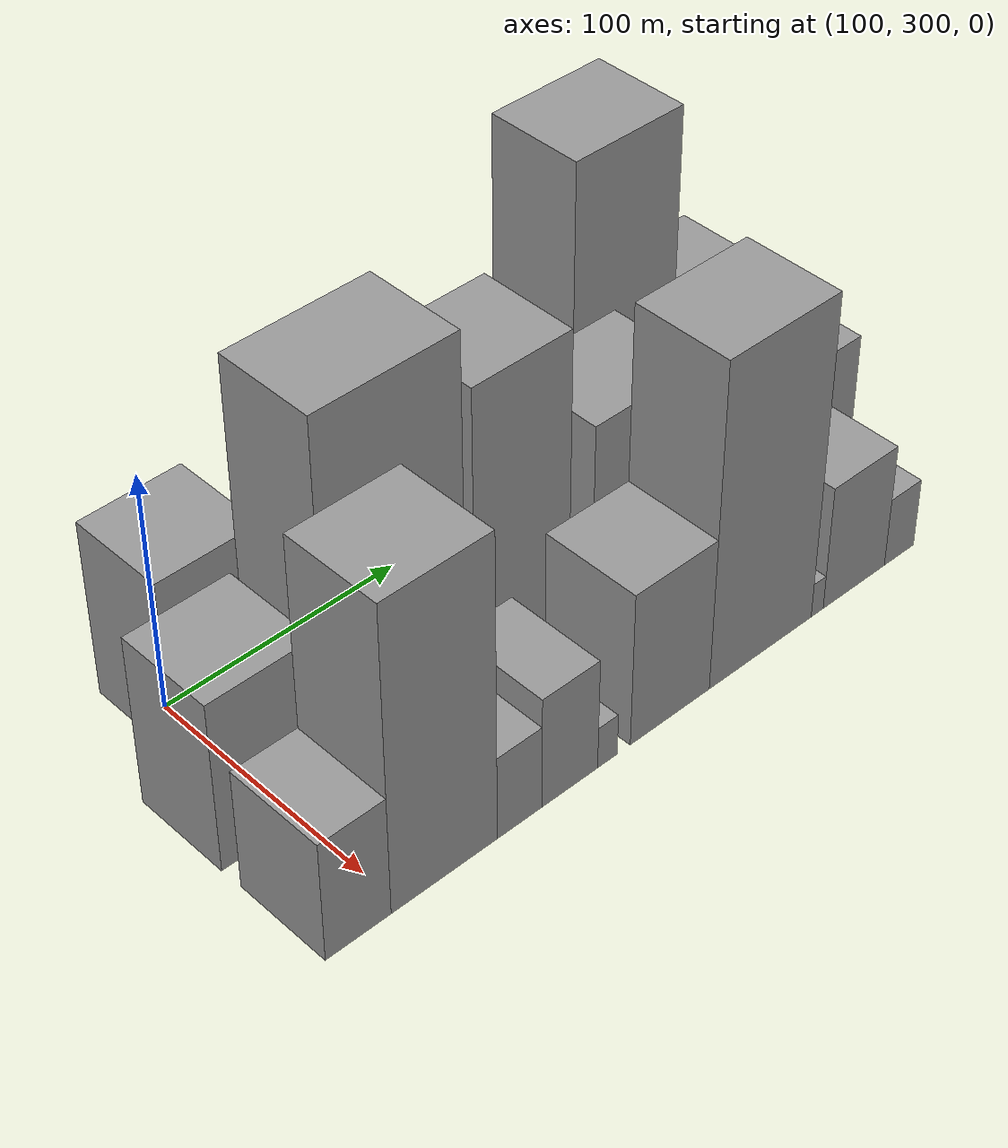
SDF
<sdf version="1.6">
 <world name="default">
  <model name="building_26">
   <static>1</static>
   <pose>100.0000 309.3299 0 0.000000 0.000000 0.000000</pose>
   <link name="link">
    <pose>0 0 37.50 0 0 0</pose>
    <collision name="collision"><geometry><box><size>40.0000 41.6088 75.0000</size></box></geometry></collision>
    <visual name="visual">
     <cast_shadows>0</cast_shadows>
     <geometry><box><size>40.0000 41.6088 75.0000</size></box></geometry>
     <material>
      <script>
       <uri>model://grey_wall/materials/scripts</uri>
       <uri>model://grey_wall/materials/textures</uri>
       <name>vrc/grey_wall</name>
      </script>
     </material>
    </visual>
   </link>
  </model>
  <model name="building_27">
   <static>1</static>
   <pose>100.0000 342.5197 0 0.000000 0.000000 0.000000</pose>
   <link name="link">
    <pose>0 0 22.50 0 0 0</pose>
    <collision name="collision"><geometry><box><size>40.0000 24.7709 45.0000</size></box></geometry></collision>
    <visual name="visual">
     <cast_shadows>0</cast_shadows>
     <geometry><box><size>40.0000 24.7709 45.0000</size></box></geometry>
     <material>
      <script>
       <uri>model://grey_wall/materials/scripts</uri>
       <uri>model://grey_wall/materials/textures</uri>
       <name>vrc/grey_wall</name>
      </script>
     </material>
    </visual>
   </link>
  </model>
  <model name="building_28">
   <static>1</static>
   <pose>100.0000 368.0168 0 0.000000 0.000000 0.000000</pose>
   <link name="link">
    <pose>0 0 24.00 0 0 0</pose>
    <collision name="collision"><geometry><box><size>40.0000 26.2232 48.0000</size></box></geometry></collision>
    <visual name="visual">
     <cast_shadows>0</cast_shadows>
     <geometry><box><size>40.0000 26.2232 48.0000</size></box></geometry>
     <material>
      <script>
       <uri>model://grey_wall/materials/scripts</uri>
       <uri>model://grey_wall/materials/textures</uri>
       <name>vrc/grey_wall</name>
      </script>
     </material>
    </visual>
   </link>
  </model>
  <model name="building_29">
   <static>1</static>
   <pose>100.0000 400.9794 0 0.000000 0.000000 0.000000</pose>
   <link name="link">
    <pose>0 0 36.00 0 0 0</pose>
    <collision name="collision"><geometry><box><size>40.0000 39.7020 72.0000</size></box></geometry></collision>
    <visual name="visual">
     <cast_shadows>0</cast_shadows>
     <geometry><box><size>40.0000 39.7020 72.0000</size></box></geometry>
     <material>
      <script>
       <uri>model://grey_wall/materials/scripts</uri>
       <uri>model://grey_wall/materials/textures</uri>
       <name>vrc/grey_wall</name>
      </script>
     </material>
    </visual>
   </link>
  </model>
  <model name="building_30">
   <static>1</static>
   <pose>100.0000 440.6748 0 0.000000 0.000000 0.000000</pose>
   <link name="link">
    <pose>0 0 36.00 0 0 0</pose>
    <collision name="collision"><geometry><box><size>40.0000 39.6888 72.0000</size></box></geometry></collision>
    <visual name="visual">
     <cast_shadows>0</cast_shadows>
     <geometry><box><size>40.0000 39.6888 72.0000</size></box></geometry>
     <material>
      <script>
       <uri>model://grey_wall/materials/scripts</uri>
       <uri>model://grey_wall/materials/textures</uri>
       <name>vrc/grey_wall</name>
      </script>
     </material>
    </visual>
   </link>
  </model>
  <model name="building_31">
   <static>1</static>
   <pose>100.0000 492.5339 0 0.000000 0.000000 0.000000</pose>
   <link name="link">
    <pose>0 0 73.50 0 0 0</pose>
    <collision name="collision"><geometry><box><size>40.0000 50.0295 147.0000</size></box></geometry></collision>
    <visual name="visual">
     <cast_shadows>0</cast_shadows>
     <geometry><box><size>40.0000 50.0295 147.0000</size></box></geometry>
     <material>
      <script>
       <uri>model://grey_wall/materials/scripts</uri>
       <uri>model://grey_wall/materials/textures</uri>
       <name>vrc/grey_wall</name>
      </script>
     </material>
    </visual>
   </link>
  </model>
  <model name="building_32">
   <static>1</static>
   <pose>100.0000 522.5782 0 0.000000 0.000000 0.000000</pose>
   <link name="link">
    <pose>0 0 10.50 0 0 0</pose>
    <collision name="collision"><geometry><box><size>40.0000 10.0590 21.0000</size></box></geometry></collision>
    <visual name="visual">
     <cast_shadows>0</cast_shadows>
     <geometry><box><size>40.0000 10.0590 21.0000</size></box></geometry>
     <material>
      <script>
       <uri>model://grey_wall/materials/scripts</uri>
       <uri>model://grey_wall/materials/textures</uri>
       <name>vrc/grey_wall</name>
      </script>
     </material>
    </visual>
   </link>
  </model>
  <model name="building_33">
   <static>1</static>
   <pose>100.0000 548.5103 0 0.000000 0.000000 0.000000</pose>
   <link name="link">
    <pose>0 0 30.00 0 0 0</pose>
    <collision name="collision"><geometry><box><size>40.0000 31.8052 60.0000</size></box></geometry></collision>
    <visual name="visual">
     <cast_shadows>0</cast_shadows>
     <geometry><box><size>40.0000 31.8052 60.0000</size></box></geometry>
     <material>
      <script>
       <uri>model://grey_wall/materials/scripts</uri>
       <uri>model://grey_wall/materials/textures</uri>
       <name>vrc/grey_wall</name>
      </script>
     </material>
    </visual>
   </link>
  </model>
  <model name="building_60">
   <static>1</static>
   <pose>149.0000 289.8240 0 0.000000 0.000000 0.000000</pose>
   <link name="link">
    <pose>0 0 36.00 0 0 0</pose>
    <collision name="collision"><geometry><box><size>40.0000 41.8250 72.0000</size></box></geometry></collision>
    <visual name="visual">
     <cast_shadows>0</cast_shadows>
     <geometry><box><size>40.0000 41.8250 72.0000</size></box></geometry>
     <material>
      <script>
       <uri>model://grey_wall/materials/scripts</uri>
       <uri>model://grey_wall/materials/textures</uri>
       <name>vrc/grey_wall</name>
      </script>
     </material>
    </visual>
   </link>
  </model>
  <model name="building_61">
   <static>1</static>
   <pose>149.0000 342.8504 0 0.000000 0.000000 0.000000</pose>
   <link name="link">
    <pose>0 0 78.00 0 0 0</pose>
    <collision name="collision"><geometry><box><size>40.0000 58.2279 156.0000</size></box></geometry></collision>
    <visual name="visual">
     <cast_shadows>0</cast_shadows>
     <geometry><box><size>40.0000 58.2279 156.0000</size></box></geometry>
     <material>
      <script>
       <uri>model://grey_wall/materials/scripts</uri>
       <uri>model://grey_wall/materials/textures</uri>
       <name>vrc/grey_wall</name>
      </script>
     </material>
    </visual>
   </link>
  </model>
  <model name="building_62">
   <static>1</static>
   <pose>149.0000 397.2505 0 0.000000 0.000000 0.000000</pose>
   <link name="link">
    <pose>0 0 66.00 0 0 0</pose>
    <collision name="collision"><geometry><box><size>40.0000 42.5723 132.0000</size></box></geometry></collision>
    <visual name="visual">
     <cast_shadows>0</cast_shadows>
     <geometry><box><size>40.0000 42.5723 132.0000</size></box></geometry>
     <material>
      <script>
       <uri>model://grey_wall/materials/scripts</uri>
       <uri>model://grey_wall/materials/textures</uri>
       <name>vrc/grey_wall</name>
      </script>
     </material>
    </visual>
   </link>
  </model>
  <model name="building_63">
   <static>1</static>
   <pose>149.0000 422.5136 0 0.000000 0.000000 0.000000</pose>
   <link name="link">
    <pose>0 0 9.00 0 0 0</pose>
    <collision name="collision"><geometry><box><size>40.0000 7.9540 18.0000</size></box></geometry></collision>
    <visual name="visual">
     <cast_shadows>0</cast_shadows>
     <geometry><box><size>40.0000 7.9540 18.0000</size></box></geometry>
     <material>
      <script>
       <uri>model://grey_wall/materials/scripts</uri>
       <uri>model://grey_wall/materials/textures</uri>
       <name>vrc/grey_wall</name>
      </script>
     </material>
    </visual>
   </link>
  </model>
  <model name="building_64">
   <static>1</static>
   <pose>149.0000 453.8273 0 0.000000 0.000000 0.000000</pose>
   <link name="link">
    <pose>0 0 43.50 0 0 0</pose>
    <collision name="collision"><geometry><box><size>40.0000 48.6734 87.0000</size></box></geometry></collision>
    <visual name="visual">
     <cast_shadows>0</cast_shadows>
     <geometry><box><size>40.0000 48.6734 87.0000</size></box></geometry>
     <material>
      <script>
       <uri>model://grey_wall/materials/scripts</uri>
       <uri>model://grey_wall/materials/textures</uri>
       <name>vrc/grey_wall</name>
      </script>
     </material>
    </visual>
   </link>
  </model>
  <model name="building_65">
   <static>1</static>
   <pose>149.0000 490.2933 0 0.000000 0.000000 0.000000</pose>
   <link name="link">
    <pose>0 0 22.50 0 0 0</pose>
    <collision name="collision"><geometry><box><size>40.0000 24.2587 45.0000</size></box></geometry></collision>
    <visual name="visual">
     <cast_shadows>0</cast_shadows>
     <geometry><box><size>40.0000 24.2587 45.0000</size></box></geometry>
     <material>
      <script>
       <uri>model://grey_wall/materials/scripts</uri>
       <uri>model://grey_wall/materials/textures</uri>
       <name>vrc/grey_wall</name>
      </script>
     </material>
    </visual>
   </link>
  </model>
  <model name="building_66">
   <static>1</static>
   <pose>149.0000 521.5453 0 0.000000 0.000000 0.000000</pose>
   <link name="link">
    <pose>0 0 22.50 0 0 0</pose>
    <collision name="collision"><geometry><box><size>40.0000 26.2451 45.0000</size></box></geometry></collision>
    <visual name="visual">
     <cast_shadows>0</cast_shadows>
     <geometry><box><size>40.0000 26.2451 45.0000</size></box></geometry>
     <material>
      <script>
       <uri>model://grey_wall/materials/scripts</uri>
       <uri>model://grey_wall/materials/textures</uri>
       <name>vrc/grey_wall</name>
      </script>
     </material>
    </visual>
   </link>
  </model>
  <model name="building_67">
   <static>1</static>
   <pose>149.0000 548.5156 0 0.000000 0.000000 0.000000</pose>
   <link name="link">
    <pose>0 0 27.00 0 0 0</pose>
    <collision name="collision"><geometry><box><size>40.0000 27.6955 54.0000</size></box></geometry></collision>
    <visual name="visual">
     <cast_shadows>0</cast_shadows>
     <geometry><box><size>40.0000 27.6955 54.0000</size></box></geometry>
     <material>
      <script>
       <uri>model://grey_wall/materials/scripts</uri>
       <uri>model://grey_wall/materials/textures</uri>
       <name>vrc/grey_wall</name>
      </script>
     </material>
    </visual>
   </link>
  </model>
  <model name="building_92">
   <static>1</static>
   <pose>198.0000 282.4220 0 0.000000 0.000000 0.000000</pose>
   <link name="link">
    <pose>0 0 25.50 0 0 0</pose>
    <collision name="collision"><geometry><box><size>40.0000 26.2561 51.0000</size></box></geometry></collision>
    <visual name="visual">
     <cast_shadows>0</cast_shadows>
     <geometry><box><size>40.0000 26.2561 51.0000</size></box></geometry>
     <material>
      <script>
       <uri>model://grey_wall/materials/scripts</uri>
       <uri>model://grey_wall/materials/textures</uri>
       <name>vrc/grey_wall</name>
      </script>
     </material>
    </visual>
   </link>
  </model>
  <model name="building_93">
   <static>1</static>
   <pose>198.0000 317.6720 0 0.000000 0.000000 0.000000</pose>
   <link name="link">
    <pose>0 0 64.50 0 0 0</pose>
    <collision name="collision"><geometry><box><size>40.0000 44.2439 129.0000</size></box></geometry></collision>
    <visual name="visual">
     <cast_shadows>0</cast_shadows>
     <geometry><box><size>40.0000 44.2439 129.0000</size></box></geometry>
     <material>
      <script>
       <uri>model://grey_wall/materials/scripts</uri>
       <uri>model://grey_wall/materials/textures</uri>
       <name>vrc/grey_wall</name>
      </script>
     </material>
    </visual>
   </link>
  </model>
  <model name="building_94">
   <static>1</static>
   <pose>198.0000 349.4217 0 0.000000 0.000000 0.000000</pose>
   <link name="link">
    <pose>0 0 18.00 0 0 0</pose>
    <collision name="collision"><geometry><box><size>40.0000 19.2553 36.0000</size></box></geometry></collision>
    <visual name="visual">
     <cast_shadows>0</cast_shadows>
     <geometry><box><size>40.0000 19.2553 36.0000</size></box></geometry>
     <material>
      <script>
       <uri>model://grey_wall/materials/scripts</uri>
       <uri>model://grey_wall/materials/textures</uri>
       <name>vrc/grey_wall</name>
      </script>
     </material>
    </visual>
   </link>
  </model>
  <model name="building_95">
   <static>1</static>
   <pose>198.0000 371.5043 0 0.000000 0.000000 0.000000</pose>
   <link name="link">
    <pose>0 0 24.00 0 0 0</pose>
    <collision name="collision"><geometry><box><size>40.0000 24.9100 48.0000</size></box></geometry></collision>
    <visual name="visual">
     <cast_shadows>0</cast_shadows>
     <geometry><box><size>40.0000 24.9100 48.0000</size></box></geometry>
     <material>
      <script>
       <uri>model://grey_wall/materials/scripts</uri>
       <uri>model://grey_wall/materials/textures</uri>
       <name>vrc/grey_wall</name>
      </script>
     </material>
    </visual>
   </link>
  </model>
  <model name="building_96">
   <static>1</static>
   <pose>198.0000 388.4126 0 0.000000 0.000000 0.000000</pose>
   <link name="link">
    <pose>0 0 9.00 0 0 0</pose>
    <collision name="collision"><geometry><box><size>40.0000 8.9066 18.0000</size></box></geometry></collision>
    <visual name="visual">
     <cast_shadows>0</cast_shadows>
     <geometry><box><size>40.0000 8.9066 18.0000</size></box></geometry>
     <material>
      <script>
       <uri>model://grey_wall/materials/scripts</uri>
       <uri>model://grey_wall/materials/textures</uri>
       <name>vrc/grey_wall</name>
      </script>
     </material>
    </visual>
   </link>
  </model>
  <model name="building_97">
   <static>1</static>
   <pose>198.0000 417.4817 0 0.000000 0.000000 0.000000</pose>
   <link name="link">
    <pose>0 0 33.00 0 0 0</pose>
    <collision name="collision"><geometry><box><size>40.0000 37.2315 66.0000</size></box></geometry></collision>
    <visual name="visual">
     <cast_shadows>0</cast_shadows>
     <geometry><box><size>40.0000 37.2315 66.0000</size></box></geometry>
     <material>
      <script>
       <uri>model://grey_wall/materials/scripts</uri>
       <uri>model://grey_wall/materials/textures</uri>
       <name>vrc/grey_wall</name>
      </script>
     </material>
    </visual>
   </link>
  </model>
  <model name="building_98">
   <static>1</static>
   <pose>198.0000 461.3898 0 0.000000 0.000000 0.000000</pose>
   <link name="link">
    <pose>0 0 69.00 0 0 0</pose>
    <collision name="collision"><geometry><box><size>40.0000 50.5847 138.0000</size></box></geometry></collision>
    <visual name="visual">
     <cast_shadows>0</cast_shadows>
     <geometry><box><size>40.0000 50.5847 138.0000</size></box></geometry>
     <material>
      <script>
       <uri>model://grey_wall/materials/scripts</uri>
       <uri>model://grey_wall/materials/textures</uri>
       <name>vrc/grey_wall</name>
      </script>
     </material>
    </visual>
   </link>
  </model>
  <model name="building_99">
   <static>1</static>
   <pose>198.0000 489.7588 0 0.000000 0.000000 0.000000</pose>
   <link name="link">
    <pose>0 0 7.50 0 0 0</pose>
    <collision name="collision"><geometry><box><size>40.0000 6.1533 15.0000</size></box></geometry></collision>
    <visual name="visual">
     <cast_shadows>0</cast_shadows>
     <geometry><box><size>40.0000 6.1533 15.0000</size></box></geometry>
     <material>
      <script>
       <uri>model://grey_wall/materials/scripts</uri>
       <uri>model://grey_wall/materials/textures</uri>
       <name>vrc/grey_wall</name>
      </script>
     </material>
    </visual>
   </link>
  </model>
  <model name="building_100">
   <static>1</static>
   <pose>198.0000 508.8793 0 0.000000 0.000000 0.000000</pose>
   <link name="link">
    <pose>0 0 27.00 0 0 0</pose>
    <collision name="collision"><geometry><box><size>40.0000 32.0877 54.0000</size></box></geometry></collision>
    <visual name="visual">
     <cast_shadows>0</cast_shadows>
     <geometry><box><size>40.0000 32.0877 54.0000</size></box></geometry>
     <material>
      <script>
       <uri>model://grey_wall/materials/scripts</uri>
       <uri>model://grey_wall/materials/textures</uri>
       <name>vrc/grey_wall</name>
      </script>
     </material>
    </visual>
   </link>
  </model>
  <model name="building_101">
   <static>1</static>
   <pose>198.0000 532.7438 0 0.000000 0.000000 0.000000</pose>
   <link name="link">
    <pose>0 0 15.00 0 0 0</pose>
    <collision name="collision"><geometry><box><size>40.0000 15.6412 30.0000</size></box></geometry></collision>
    <visual name="visual">
     <cast_shadows>0</cast_shadows>
     <geometry><box><size>40.0000 15.6412 30.0000</size></box></geometry>
     <material>
      <script>
       <uri>model://grey_wall/materials/scripts</uri>
       <uri>model://grey_wall/materials/textures</uri>
       <name>vrc/grey_wall</name>
      </script>
     </material>
    </visual>
   </link>
  </model>
 </world>
</sdf>
